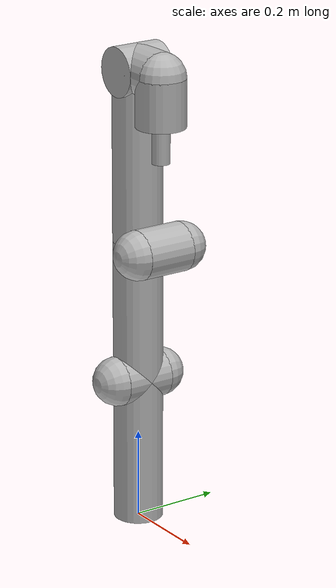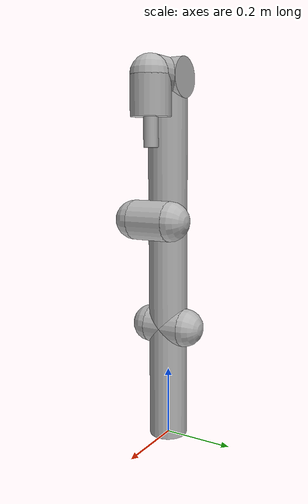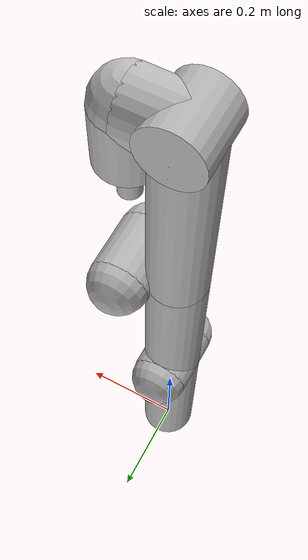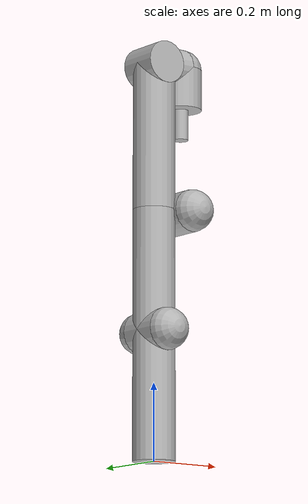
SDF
<?xml version='1.0'?>
<sdf version='1.6'>
		<model name="pmfranka">
			<self_collide>true</self_collide>
			<pose>0.0 0.0 0.0 0.0 0.0 0.0</pose>
			<!-- Start of parts of the pmodel pmfranka -->
			<!-- End of parts of the pmodel pmfranka -->

			<!-- Start of links of the pmodel pmfranka -->
			<!-- link full name is pmfranka::Li0 -->
			<link name="1-Li0">
					<pose>0.0 0.0 0.0 0.0 0.0 0.0</pose>
					<inertial>
						<pose>0.0 0.0 0.0 0.0 0.0 0.0</pose>
						<inertia>
							<ixx>1.0</ixx>
							<ixy>0.0</ixy>
							<ixz>0.0</ixz>
							<iyy>1.0</iyy>
							<iyz>0.0</iyz>
							<izz>1.0</izz>
						</inertia>
						<mass>3.452500104904175</mass>
					</inertial>
					<!-- body full name is pmfranka::Li0::Cy0 -->
					<collision name="1--Cy0">
						<laser_retro>0.0</laser_retro>
						<pose>0.0 0.0 0.1665000021457672 0.0 0.0 0.0</pose>
						<geometry>
							<cylinder>
								<radius>0.054999999701976776</radius>
								<length>0.3330000042915344</length>
							</cylinder>
						</geometry>
						<surface>
							<bounce>
								<restitution_coefficient>0.0</restitution_coefficient>
								<threshold>100000.0</threshold>
							</bounce>
							<friction>
								<ode>
									<mu>1.0</mu>
									<mu2>1.0</mu2>
									<fdir1>0.0 0.0 0.0</fdir1>
									<slip1>0.0</slip1>
									<slip2>0.0</slip2>
								</ode>
								<torsional>
									<coefficient>1.0</coefficient>
									<surface_radius>0.0</surface_radius>
								</torsional>
							</friction>
						</surface>
					</collision>
					<visual name="1--Cy0">
						<laser_retro>0.0</laser_retro>
						<pose>0.0 0.0 0.1665000021457672 0.0 0.0 0.0</pose>
						<geometry>
							<cylinder>
								<radius>0.054999999701976776</radius>
								<length>0.3330000042915344</length>
							</cylinder>
						</geometry>
						<surface>
							<bounce>
								<restitution_coefficient>0.0</restitution_coefficient>
								<threshold>100000.0</threshold>
							</bounce>
							<friction>
								<ode>
									<mu>1.0</mu>
									<mu2>1.0</mu2>
									<fdir1>0.0 0.0 0.0</fdir1>
									<slip1>0.0</slip1>
									<slip2>0.0</slip2>
								</ode>
								<torsional>
									<coefficient>1.0</coefficient>
									<surface_radius>0.0</surface_radius>
								</torsional>
							</friction>
						</surface>
					</visual>
					<!-- WARNING: Annotation not found for the sensor FSJ0. The SDF generator relies on annotations to specify aspects of the
					  	 sensor that are accounted for in the equations. --> If you wish to reflect these aspects in SDF,
					     please add an appropriate annotation to the sensor. -->
			</link>
			<!-- link full name is pmfranka::Li1 -->
			<link name="2-Li1">
					<pose>0.0 0.0 0.3330000042915344 1.5707499980926514 0.0 0.0</pose>
					<inertial>
						<pose>0.0 0.0 0.0 0.0 0.0 0.0</pose>
						<inertia>
							<ixx>1.0</ixx>
							<ixy>0.0</ixy>
							<ixz>0.0</ixz>
							<iyy>1.0</iyy>
							<iyz>0.0</iyz>
							<izz>1.0</izz>
						</inertia>
						<mass>3.482100009918213</mass>
					</inertial>
					<!-- body full name is pmfranka::Li1::Cy1 -->
					<collision name="2--Cy1">
						<laser_retro>0.0</laser_retro>
						<pose>0.0 0.0 0.0 0.0 0.0 0.0</pose>
						<geometry>
							<cylinder>
								<radius>0.054999999701976776</radius>
								<length>0.10999999940395355</length>
							</cylinder>
						</geometry>
						<surface>
							<bounce>
								<restitution_coefficient>0.0</restitution_coefficient>
								<threshold>100000.0</threshold>
							</bounce>
							<friction>
								<ode>
									<mu>1.0</mu>
									<mu2>1.0</mu2>
									<fdir1>0.0 0.0 0.0</fdir1>
									<slip1>0.0</slip1>
									<slip2>0.0</slip2>
								</ode>
								<torsional>
									<coefficient>1.0</coefficient>
									<surface_radius>0.0</surface_radius>
								</torsional>
							</friction>
						</surface>
					</collision>
					<visual name="2--Cy1">
						<laser_retro>0.0</laser_retro>
						<pose>0.0 0.0 0.0 0.0 0.0 0.0</pose>
						<geometry>
							<cylinder>
								<radius>0.054999999701976776</radius>
								<length>0.10999999940395355</length>
							</cylinder>
						</geometry>
						<surface>
							<bounce>
								<restitution_coefficient>0.0</restitution_coefficient>
								<threshold>100000.0</threshold>
							</bounce>
							<friction>
								<ode>
									<mu>1.0</mu>
									<mu2>1.0</mu2>
									<fdir1>0.0 0.0 0.0</fdir1>
									<slip1>0.0</slip1>
									<slip2>0.0</slip2>
								</ode>
								<torsional>
									<coefficient>1.0</coefficient>
									<surface_radius>0.0</surface_radius>
								</torsional>
							</friction>
						</surface>
					</visual>
					<!-- body full name is pmfranka::Li1::Sp1a -->
					<collision name="3--Sp1a">
						<laser_retro>0.0</laser_retro>
						<pose>0.0 0.0 0.054999999701976776 0.0 0.0 0.0</pose>
						<geometry>
							<sphere>
								<radius>0.054999999701976776</radius>
							</sphere>
						</geometry>
						<surface>
							<bounce>
								<restitution_coefficient>0.0</restitution_coefficient>
								<threshold>100000.0</threshold>
							</bounce>
							<friction>
								<ode>
									<mu>1.0</mu>
									<mu2>1.0</mu2>
									<fdir1>0.0 0.0 0.0</fdir1>
									<slip1>0.0</slip1>
									<slip2>0.0</slip2>
								</ode>
								<torsional>
									<coefficient>1.0</coefficient>
									<surface_radius>0.0</surface_radius>
								</torsional>
							</friction>
						</surface>
					</collision>
					<visual name="3--Sp1a">
						<laser_retro>0.0</laser_retro>
						<pose>0.0 0.0 0.054999999701976776 0.0 0.0 0.0</pose>
						<geometry>
							<sphere>
								<radius>0.054999999701976776</radius>
							</sphere>
						</geometry>
						<surface>
							<bounce>
								<restitution_coefficient>0.0</restitution_coefficient>
								<threshold>100000.0</threshold>
							</bounce>
							<friction>
								<ode>
									<mu>1.0</mu>
									<mu2>1.0</mu2>
									<fdir1>0.0 0.0 0.0</fdir1>
									<slip1>0.0</slip1>
									<slip2>0.0</slip2>
								</ode>
								<torsional>
									<coefficient>1.0</coefficient>
									<surface_radius>0.0</surface_radius>
								</torsional>
							</friction>
						</surface>
					</visual>
					<!-- body full name is pmfranka::Li1::Sp1b -->
					<collision name="4--Sp1b">
						<laser_retro>0.0</laser_retro>
						<pose>0.0 0.0 -0.054999999701976776 0.0 0.0 0.0</pose>
						<geometry>
							<sphere>
								<radius>0.054999999701976776</radius>
							</sphere>
						</geometry>
						<surface>
							<bounce>
								<restitution_coefficient>0.0</restitution_coefficient>
								<threshold>100000.0</threshold>
							</bounce>
							<friction>
								<ode>
									<mu>1.0</mu>
									<mu2>1.0</mu2>
									<fdir1>0.0 0.0 0.0</fdir1>
									<slip1>0.0</slip1>
									<slip2>0.0</slip2>
								</ode>
								<torsional>
									<coefficient>1.0</coefficient>
									<surface_radius>0.0</surface_radius>
								</torsional>
							</friction>
						</surface>
					</collision>
					<visual name="4--Sp1b">
						<laser_retro>0.0</laser_retro>
						<pose>0.0 0.0 -0.054999999701976776 0.0 0.0 0.0</pose>
						<geometry>
							<sphere>
								<radius>0.054999999701976776</radius>
							</sphere>
						</geometry>
						<surface>
							<bounce>
								<restitution_coefficient>0.0</restitution_coefficient>
								<threshold>100000.0</threshold>
							</bounce>
							<friction>
								<ode>
									<mu>1.0</mu>
									<mu2>1.0</mu2>
									<fdir1>0.0 0.0 0.0</fdir1>
									<slip1>0.0</slip1>
									<slip2>0.0</slip2>
								</ode>
								<torsional>
									<coefficient>1.0</coefficient>
									<surface_radius>0.0</surface_radius>
								</torsional>
							</friction>
						</surface>
					</visual>
					<!-- WARNING: Annotation not found for the sensor FSJ1. The SDF generator relies on annotations to specify aspects of the
					  	 sensor that are accounted for in the equations. --> If you wish to reflect these aspects in SDF,
					     please add an appropriate annotation to the sensor. -->
			</link>
			<!-- link full name is pmfranka::Li2 -->
			<link name="3-Li2">
					<pose>0.0 0.0 0.3330000042915344 0.0 0.0 0.0</pose>
					<inertial>
						<pose>0.0 0.0 0.0 0.0 0.0 0.0</pose>
						<inertia>
							<ixx>1.0</ixx>
							<ixy>0.0</ixy>
							<ixz>0.0</ixz>
							<iyy>1.0</iyy>
							<iyz>0.0</iyz>
							<izz>1.0</izz>
						</inertia>
						<mass>3.482100009918213</mass>
					</inertial>
					<!-- body full name is pmfranka::Li2::Cy2 -->
					<collision name="5--Cy2">
						<laser_retro>0.0</laser_retro>
						<pose>0.0 0.0 0.15800000727176666 0.0 0.0 0.0</pose>
						<geometry>
							<cylinder>
								<radius>0.054999999701976776</radius>
								<length>0.3160000145435333</length>
							</cylinder>
						</geometry>
						<surface>
							<bounce>
								<restitution_coefficient>0.0</restitution_coefficient>
								<threshold>100000.0</threshold>
							</bounce>
							<friction>
								<ode>
									<mu>1.0</mu>
									<mu2>1.0</mu2>
									<fdir1>0.0 0.0 0.0</fdir1>
									<slip1>0.0</slip1>
									<slip2>0.0</slip2>
								</ode>
								<torsional>
									<coefficient>1.0</coefficient>
									<surface_radius>0.0</surface_radius>
								</torsional>
							</friction>
						</surface>
					</collision>
					<visual name="5--Cy2">
						<laser_retro>0.0</laser_retro>
						<pose>0.0 0.0 0.15800000727176666 0.0 0.0 0.0</pose>
						<geometry>
							<cylinder>
								<radius>0.054999999701976776</radius>
								<length>0.3160000145435333</length>
							</cylinder>
						</geometry>
						<surface>
							<bounce>
								<restitution_coefficient>0.0</restitution_coefficient>
								<threshold>100000.0</threshold>
							</bounce>
							<friction>
								<ode>
									<mu>1.0</mu>
									<mu2>1.0</mu2>
									<fdir1>0.0 0.0 0.0</fdir1>
									<slip1>0.0</slip1>
									<slip2>0.0</slip2>
								</ode>
								<torsional>
									<coefficient>1.0</coefficient>
									<surface_radius>0.0</surface_radius>
								</torsional>
							</friction>
						</surface>
					</visual>
					<!-- WARNING: Annotation not found for the sensor FSJ2. The SDF generator relies on annotations to specify aspects of the
					  	 sensor that are accounted for in the equations. --> If you wish to reflect these aspects in SDF,
					     please add an appropriate annotation to the sensor. -->
			</link>
			<!-- link full name is pmfranka::Li3 -->
			<link name="4-Li3">
					<pose>0.08250000327825546 0.0 0.6489999890327454 1.5707499980926514 0.0 0.0</pose>
					<inertial>
						<pose>0.0 0.0 0.0 0.0 0.0 0.0</pose>
						<inertia>
							<ixx>1.0</ixx>
							<ixy>0.0</ixy>
							<ixz>0.0</ixz>
							<iyy>1.0</iyy>
							<iyz>0.0</iyz>
							<izz>1.0</izz>
						</inertia>
						<mass>4.05620002746582</mass>
					</inertial>
					<!-- body full name is pmfranka::Li3::Cy3 -->
					<collision name="6--Cy3">
						<laser_retro>0.0</laser_retro>
						<pose>0.0 0.0 0.0 0.0 0.0 0.0</pose>
						<geometry>
							<cylinder>
								<radius>0.054999999701976776</radius>
								<length>0.10999999940395355</length>
							</cylinder>
						</geometry>
						<surface>
							<bounce>
								<restitution_coefficient>0.0</restitution_coefficient>
								<threshold>100000.0</threshold>
							</bounce>
							<friction>
								<ode>
									<mu>1.0</mu>
									<mu2>1.0</mu2>
									<fdir1>0.0 0.0 0.0</fdir1>
									<slip1>0.0</slip1>
									<slip2>0.0</slip2>
								</ode>
								<torsional>
									<coefficient>1.0</coefficient>
									<surface_radius>0.0</surface_radius>
								</torsional>
							</friction>
						</surface>
					</collision>
					<visual name="6--Cy3">
						<laser_retro>0.0</laser_retro>
						<pose>0.0 0.0 0.0 0.0 0.0 0.0</pose>
						<geometry>
							<cylinder>
								<radius>0.054999999701976776</radius>
								<length>0.10999999940395355</length>
							</cylinder>
						</geometry>
						<surface>
							<bounce>
								<restitution_coefficient>0.0</restitution_coefficient>
								<threshold>100000.0</threshold>
							</bounce>
							<friction>
								<ode>
									<mu>1.0</mu>
									<mu2>1.0</mu2>
									<fdir1>0.0 0.0 0.0</fdir1>
									<slip1>0.0</slip1>
									<slip2>0.0</slip2>
								</ode>
								<torsional>
									<coefficient>1.0</coefficient>
									<surface_radius>0.0</surface_radius>
								</torsional>
							</friction>
						</surface>
					</visual>
					<!-- body full name is pmfranka::Li3::Sp3a -->
					<collision name="7--Sp3a">
						<laser_retro>0.0</laser_retro>
						<pose>0.0 0.0 0.054999999701976776 0.0 0.0 0.0</pose>
						<geometry>
							<sphere>
								<radius>0.054999999701976776</radius>
							</sphere>
						</geometry>
						<surface>
							<bounce>
								<restitution_coefficient>0.0</restitution_coefficient>
								<threshold>100000.0</threshold>
							</bounce>
							<friction>
								<ode>
									<mu>1.0</mu>
									<mu2>1.0</mu2>
									<fdir1>0.0 0.0 0.0</fdir1>
									<slip1>0.0</slip1>
									<slip2>0.0</slip2>
								</ode>
								<torsional>
									<coefficient>1.0</coefficient>
									<surface_radius>0.0</surface_radius>
								</torsional>
							</friction>
						</surface>
					</collision>
					<visual name="7--Sp3a">
						<laser_retro>0.0</laser_retro>
						<pose>0.0 0.0 0.054999999701976776 0.0 0.0 0.0</pose>
						<geometry>
							<sphere>
								<radius>0.054999999701976776</radius>
							</sphere>
						</geometry>
						<surface>
							<bounce>
								<restitution_coefficient>0.0</restitution_coefficient>
								<threshold>100000.0</threshold>
							</bounce>
							<friction>
								<ode>
									<mu>1.0</mu>
									<mu2>1.0</mu2>
									<fdir1>0.0 0.0 0.0</fdir1>
									<slip1>0.0</slip1>
									<slip2>0.0</slip2>
								</ode>
								<torsional>
									<coefficient>1.0</coefficient>
									<surface_radius>0.0</surface_radius>
								</torsional>
							</friction>
						</surface>
					</visual>
					<!-- body full name is pmfranka::Li3::Sp3b -->
					<collision name="8--Sp3b">
						<laser_retro>0.0</laser_retro>
						<pose>0.0 0.0 -0.054999999701976776 0.0 0.0 0.0</pose>
						<geometry>
							<sphere>
								<radius>0.054999999701976776</radius>
							</sphere>
						</geometry>
						<surface>
							<bounce>
								<restitution_coefficient>0.0</restitution_coefficient>
								<threshold>100000.0</threshold>
							</bounce>
							<friction>
								<ode>
									<mu>1.0</mu>
									<mu2>1.0</mu2>
									<fdir1>0.0 0.0 0.0</fdir1>
									<slip1>0.0</slip1>
									<slip2>0.0</slip2>
								</ode>
								<torsional>
									<coefficient>1.0</coefficient>
									<surface_radius>0.0</surface_radius>
								</torsional>
							</friction>
						</surface>
					</collision>
					<visual name="8--Sp3b">
						<laser_retro>0.0</laser_retro>
						<pose>0.0 0.0 -0.054999999701976776 0.0 0.0 0.0</pose>
						<geometry>
							<sphere>
								<radius>0.054999999701976776</radius>
							</sphere>
						</geometry>
						<surface>
							<bounce>
								<restitution_coefficient>0.0</restitution_coefficient>
								<threshold>100000.0</threshold>
							</bounce>
							<friction>
								<ode>
									<mu>1.0</mu>
									<mu2>1.0</mu2>
									<fdir1>0.0 0.0 0.0</fdir1>
									<slip1>0.0</slip1>
									<slip2>0.0</slip2>
								</ode>
								<torsional>
									<coefficient>1.0</coefficient>
									<surface_radius>0.0</surface_radius>
								</torsional>
							</friction>
						</surface>
					</visual>
					<!-- WARNING: Annotation not found for the sensor FSJ3. The SDF generator relies on annotations to specify aspects of the
					  	 sensor that are accounted for in the equations. --> If you wish to reflect these aspects in SDF,
					     please add an appropriate annotation to the sensor. -->
			</link>
			<!-- link full name is pmfranka::Li4 -->
			<link name="5-Li4">
					<pose>0.0 0.0 0.6489999890327454 0.0 0.0 0.0</pose>
					<inertial>
						<pose>0.0 0.0 0.0 0.0 0.0 0.0</pose>
						<inertia>
							<ixx>1.0</ixx>
							<ixy>0.0</ixy>
							<ixz>0.0</ixz>
							<iyy>1.0</iyy>
							<iyz>0.0</iyz>
							<izz>1.0</izz>
						</inertia>
						<mass>3.4821999073028564</mass>
					</inertial>
					<!-- body full name is pmfranka::Li4::Cy4 -->
					<collision name="9--Cy4">
						<laser_retro>0.0</laser_retro>
						<pose>0.0 0.0 0.19200000166893005 0.0 0.0 0.0</pose>
						<geometry>
							<cylinder>
								<radius>0.054999999701976776</radius>
								<length>0.3840000033378601</length>
							</cylinder>
						</geometry>
						<surface>
							<bounce>
								<restitution_coefficient>0.0</restitution_coefficient>
								<threshold>100000.0</threshold>
							</bounce>
							<friction>
								<ode>
									<mu>1.0</mu>
									<mu2>1.0</mu2>
									<fdir1>0.0 0.0 0.0</fdir1>
									<slip1>0.0</slip1>
									<slip2>0.0</slip2>
								</ode>
								<torsional>
									<coefficient>1.0</coefficient>
									<surface_radius>0.0</surface_radius>
								</torsional>
							</friction>
						</surface>
					</collision>
					<visual name="9--Cy4">
						<laser_retro>0.0</laser_retro>
						<pose>0.0 0.0 0.19200000166893005 0.0 0.0 0.0</pose>
						<geometry>
							<cylinder>
								<radius>0.054999999701976776</radius>
								<length>0.3840000033378601</length>
							</cylinder>
						</geometry>
						<surface>
							<bounce>
								<restitution_coefficient>0.0</restitution_coefficient>
								<threshold>100000.0</threshold>
							</bounce>
							<friction>
								<ode>
									<mu>1.0</mu>
									<mu2>1.0</mu2>
									<fdir1>0.0 0.0 0.0</fdir1>
									<slip1>0.0</slip1>
									<slip2>0.0</slip2>
								</ode>
								<torsional>
									<coefficient>1.0</coefficient>
									<surface_radius>0.0</surface_radius>
								</torsional>
							</friction>
						</surface>
					</visual>
					<!-- WARNING: Annotation not found for the sensor FSJ4. The SDF generator relies on annotations to specify aspects of the
					  	 sensor that are accounted for in the equations. --> If you wish to reflect these aspects in SDF,
					     please add an appropriate annotation to the sensor. -->
			</link>
			<!-- link full name is pmfranka::Li5 -->
			<link name="6-Li5">
					<pose>0.0 0.0 1.0330000221729279 1.5707499980926514 0.0 0.0</pose>
					<inertial>
						<pose>0.0 0.0 0.0 0.0 0.0 0.0</pose>
						<inertia>
							<ixx>1.0</ixx>
							<ixy>0.0</ixy>
							<ixz>0.0</ixz>
							<iyy>1.0</iyy>
							<iyz>0.0</iyz>
							<izz>1.0</izz>
						</inertia>
						<mass>2.163300037384033</mass>
					</inertial>
					<!-- body full name is pmfranka::Li5::Cy5 -->
					<collision name="10--Cy5">
						<laser_retro>0.0</laser_retro>
						<pose>0.0 0.0 0.0 0.0 0.0 0.0</pose>
						<geometry>
							<cylinder>
								<radius>0.054999999701976776</radius>
								<length>0.10999999940395355</length>
							</cylinder>
						</geometry>
						<surface>
							<bounce>
								<restitution_coefficient>0.0</restitution_coefficient>
								<threshold>100000.0</threshold>
							</bounce>
							<friction>
								<ode>
									<mu>1.0</mu>
									<mu2>1.0</mu2>
									<fdir1>0.0 0.0 0.0</fdir1>
									<slip1>0.0</slip1>
									<slip2>0.0</slip2>
								</ode>
								<torsional>
									<coefficient>1.0</coefficient>
									<surface_radius>0.0</surface_radius>
								</torsional>
							</friction>
						</surface>
					</collision>
					<visual name="10--Cy5">
						<laser_retro>0.0</laser_retro>
						<pose>0.0 0.0 0.0 0.0 0.0 0.0</pose>
						<geometry>
							<cylinder>
								<radius>0.054999999701976776</radius>
								<length>0.10999999940395355</length>
							</cylinder>
						</geometry>
						<surface>
							<bounce>
								<restitution_coefficient>0.0</restitution_coefficient>
								<threshold>100000.0</threshold>
							</bounce>
							<friction>
								<ode>
									<mu>1.0</mu>
									<mu2>1.0</mu2>
									<fdir1>0.0 0.0 0.0</fdir1>
									<slip1>0.0</slip1>
									<slip2>0.0</slip2>
								</ode>
								<torsional>
									<coefficient>1.0</coefficient>
									<surface_radius>0.0</surface_radius>
								</torsional>
							</friction>
						</surface>
					</visual>
					<!-- WARNING: Annotation not found for the sensor FSJ5. The SDF generator relies on annotations to specify aspects of the
					  	 sensor that are accounted for in the equations. --> If you wish to reflect these aspects in SDF,
					     please add an appropriate annotation to the sensor. -->
			</link>
			<!-- link full name is pmfranka::Li6 -->
			<link name="7-Li6">
					<pose>0.0 0.0 1.0330000221729279 1.5707499980926514 0.0 1.5707499980926514</pose>
					<inertial>
						<pose>0.0 0.0 0.0 0.0 0.0 0.0</pose>
						<inertia>
							<ixx>1.0</ixx>
							<ixy>0.0</ixy>
							<ixz>0.0</ixz>
							<iyy>1.0</iyy>
							<iyz>0.0</iyz>
							<izz>1.0</izz>
						</inertia>
						<mass>2.34660005569458</mass>
					</inertial>
					<!-- body full name is pmfranka::Li6::Cy6 -->
					<collision name="11--Cy6">
						<laser_retro>0.0</laser_retro>
						<pose>0.0 0.0 0.04399999976158142 0.0 0.0 0.0</pose>
						<geometry>
							<cylinder>
								<radius>0.054999999701976776</radius>
								<length>0.08799999952316284</length>
							</cylinder>
						</geometry>
						<surface>
							<bounce>
								<restitution_coefficient>0.0</restitution_coefficient>
								<threshold>100000.0</threshold>
							</bounce>
							<friction>
								<ode>
									<mu>1.0</mu>
									<mu2>1.0</mu2>
									<fdir1>0.0 0.0 0.0</fdir1>
									<slip1>0.0</slip1>
									<slip2>0.0</slip2>
								</ode>
								<torsional>
									<coefficient>1.0</coefficient>
									<surface_radius>0.0</surface_radius>
								</torsional>
							</friction>
						</surface>
					</collision>
					<visual name="11--Cy6">
						<laser_retro>0.0</laser_retro>
						<pose>0.0 0.0 0.04399999976158142 0.0 0.0 0.0</pose>
						<geometry>
							<cylinder>
								<radius>0.054999999701976776</radius>
								<length>0.08799999952316284</length>
							</cylinder>
						</geometry>
						<surface>
							<bounce>
								<restitution_coefficient>0.0</restitution_coefficient>
								<threshold>100000.0</threshold>
							</bounce>
							<friction>
								<ode>
									<mu>1.0</mu>
									<mu2>1.0</mu2>
									<fdir1>0.0 0.0 0.0</fdir1>
									<slip1>0.0</slip1>
									<slip2>0.0</slip2>
								</ode>
								<torsional>
									<coefficient>1.0</coefficient>
									<surface_radius>0.0</surface_radius>
								</torsional>
							</friction>
						</surface>
					</visual>
					<!-- WARNING: Annotation not found for the sensor FSJ6. The SDF generator relies on annotations to specify aspects of the
					  	 sensor that are accounted for in the equations. --> If you wish to reflect these aspects in SDF,
					     please add an appropriate annotation to the sensor. -->
			</link>
			<!-- link full name is pmfranka::Li7 -->
			<link name="8-Li7">
					<pose>0.08799999952316284 0.0 1.0330000221729279 0.0 -3.1414999961853027 0.0</pose>
					<inertial>
						<pose>0.0 0.0 0.0 0.0 0.0 0.0</pose>
						<inertia>
							<ixx>1.0</ixx>
							<ixy>0.0</ixy>
							<ixz>0.0</ixz>
							<iyy>1.0</iyy>
							<iyz>0.0</iyz>
							<izz>1.0</izz>
						</inertia>
						<mass>0.31290000677108765</mass>
					</inertial>
					<!-- body full name is pmfranka::Li7::Sp7 -->
					<collision name="12--Sp7">
						<laser_retro>0.0</laser_retro>
						<pose>0.0 0.0 0.0 0.0 0.0 0.0</pose>
						<geometry>
							<sphere>
								<radius>0.054999999701976776</radius>
							</sphere>
						</geometry>
						<surface>
							<bounce>
								<restitution_coefficient>0.0</restitution_coefficient>
								<threshold>100000.0</threshold>
							</bounce>
							<friction>
								<ode>
									<mu>1.0</mu>
									<mu2>1.0</mu2>
									<fdir1>0.0 0.0 0.0</fdir1>
									<slip1>0.0</slip1>
									<slip2>0.0</slip2>
								</ode>
								<torsional>
									<coefficient>1.0</coefficient>
									<surface_radius>0.0</surface_radius>
								</torsional>
							</friction>
						</surface>
					</collision>
					<visual name="12--Sp7">
						<laser_retro>0.0</laser_retro>
						<pose>0.0 0.0 0.0 0.0 0.0 0.0</pose>
						<geometry>
							<sphere>
								<radius>0.054999999701976776</radius>
							</sphere>
						</geometry>
						<surface>
							<bounce>
								<restitution_coefficient>0.0</restitution_coefficient>
								<threshold>100000.0</threshold>
							</bounce>
							<friction>
								<ode>
									<mu>1.0</mu>
									<mu2>1.0</mu2>
									<fdir1>0.0 0.0 0.0</fdir1>
									<slip1>0.0</slip1>
									<slip2>0.0</slip2>
								</ode>
								<torsional>
									<coefficient>1.0</coefficient>
									<surface_radius>0.0</surface_radius>
								</torsional>
							</friction>
						</surface>
					</visual>
					<!-- body full name is pmfranka::Li7::Cy7 -->
					<collision name="13--Cy7">
						<laser_retro>0.0</laser_retro>
						<pose>0.0 0.0 0.05350000038743019 0.0 0.0 0.0</pose>
						<geometry>
							<cylinder>
								<radius>0.054999999701976776</radius>
								<length>0.10700000077486038</length>
							</cylinder>
						</geometry>
						<surface>
							<bounce>
								<restitution_coefficient>0.0</restitution_coefficient>
								<threshold>100000.0</threshold>
							</bounce>
							<friction>
								<ode>
									<mu>1.0</mu>
									<mu2>1.0</mu2>
									<fdir1>0.0 0.0 0.0</fdir1>
									<slip1>0.0</slip1>
									<slip2>0.0</slip2>
								</ode>
								<torsional>
									<coefficient>1.0</coefficient>
									<surface_radius>0.0</surface_radius>
								</torsional>
							</friction>
						</surface>
					</collision>
					<visual name="13--Cy7">
						<laser_retro>0.0</laser_retro>
						<pose>0.0 0.0 0.05350000038743019 0.0 0.0 0.0</pose>
						<geometry>
							<cylinder>
								<radius>0.054999999701976776</radius>
								<length>0.10700000077486038</length>
							</cylinder>
						</geometry>
						<surface>
							<bounce>
								<restitution_coefficient>0.0</restitution_coefficient>
								<threshold>100000.0</threshold>
							</bounce>
							<friction>
								<ode>
									<mu>1.0</mu>
									<mu2>1.0</mu2>
									<fdir1>0.0 0.0 0.0</fdir1>
									<slip1>0.0</slip1>
									<slip2>0.0</slip2>
								</ode>
								<torsional>
									<coefficient>1.0</coefficient>
									<surface_radius>0.0</surface_radius>
								</torsional>
							</friction>
						</surface>
					</visual>
					<!-- WARNING: Annotation not found for the sensor FSJ7. The SDF generator relies on annotations to specify aspects of the
					  	 sensor that are accounted for in the equations. --> If you wish to reflect these aspects in SDF,
					     please add an appropriate annotation to the sensor. -->
			</link>
			<!-- link full name is pmfranka::LiF -->
			<link name="9-LiF">
					<pose>0.08799999952316284 0.0 0.9260000213980675 0.0 -3.1414999961853027 0.0</pose>
					<inertial>
						<pose>0.0 0.0 0.0 0.0 0.0 0.0</pose>
						<inertia>
							<ixx>1.0</ixx>
							<ixy>0.0</ixy>
							<ixz>0.0</ixz>
							<iyy>1.0</iyy>
							<iyz>0.0</iyz>
							<izz>1.0</izz>
						</inertia>
						<mass>1.0</mass>
					</inertial>
					<!-- body full name is pmfranka::LiF::CyF -->
					<collision name="14--CyF">
						<laser_retro>0.0</laser_retro>
						<pose>0.0 0.0 0.03999999910593033 0.0 0.0 0.0</pose>
						<geometry>
							<cylinder>
								<radius>0.019999999552965164</radius>
								<length>0.07999999821186066</length>
							</cylinder>
						</geometry>
						<surface>
							<bounce>
								<restitution_coefficient>0.0</restitution_coefficient>
								<threshold>100000.0</threshold>
							</bounce>
							<friction>
								<ode>
									<mu>1.0</mu>
									<mu2>1.0</mu2>
									<fdir1>0.0 0.0 0.0</fdir1>
									<slip1>0.0</slip1>
									<slip2>0.0</slip2>
								</ode>
								<torsional>
									<coefficient>1.0</coefficient>
									<surface_radius>0.0</surface_radius>
								</torsional>
							</friction>
						</surface>
					</collision>
					<visual name="14--CyF">
						<laser_retro>0.0</laser_retro>
						<pose>0.0 0.0 0.03999999910593033 0.0 0.0 0.0</pose>
						<geometry>
							<cylinder>
								<radius>0.019999999552965164</radius>
								<length>0.07999999821186066</length>
							</cylinder>
						</geometry>
						<surface>
							<bounce>
								<restitution_coefficient>0.0</restitution_coefficient>
								<threshold>100000.0</threshold>
							</bounce>
							<friction>
								<ode>
									<mu>1.0</mu>
									<mu2>1.0</mu2>
									<fdir1>0.0 0.0 0.0</fdir1>
									<slip1>0.0</slip1>
									<slip2>0.0</slip2>
								</ode>
								<torsional>
									<coefficient>1.0</coefficient>
									<surface_radius>0.0</surface_radius>
								</torsional>
							</friction>
						</surface>
					</visual>
					<!-- WARNING: Annotation not found for the sensor FSG. The SDF generator relies on annotations to specify aspects of the
					  	 sensor that are accounted for in the equations. --> If you wish to reflect these aspects in SDF,
					     please add an appropriate annotation to the sensor. -->
			</link>
			<!-- End of links of the pmodel pmfranka -->

			<!-- Start of joints of the pmodel pmfranka -->
			<!-- Full name of joint: pmfranka::Li6::J6 from pmfranka::Li6 to pmfranka::Li7-->
			<joint name="10-J6" type="revolute">
				<pose>0.08799999914540547 0.0 8.153851539294266E-6 -1.570935312901533 4.292697295780423E-9 1.570842655496943</pose>
				<parent>7-Li6</parent>
				<child>8-Li7</child>
			</joint>
			<!-- Full name of joint: pmfranka::Li7::J7 from pmfranka::Li7 to pmfranka::LiF-->
			<joint name="11-J7" type="revolute">
				<pose>9.914342338088189E-6 0.0 -0.1070000003155418 0.0 -0.0 0.0</pose>
				<parent>8-Li7</parent>
				<child>9-LiF</child>
			</joint>
			<!-- Full name of joint: pmfranka::Li2::J2 from pmfranka::Li2 to pmfranka::Li3-->
			<joint name="12-J2" type="revolute">
				<pose>-0.08250000327825546 -0.31599998440208793 -1.4639869197342705E-5 -1.5707499980926514 -0.0 0.0</pose>
				<parent>3-Li2</parent>
				<child>4-Li3</child>
			</joint>
			<!-- Full name of joint: pmfranka::Li0::J0 from pmfranka::Li0 to pmfranka::Li1-->
			<joint name="13-J0" type="revolute">
				<pose>0.0 -0.33300000393416734 -1.5427458040971366E-5 -1.5707499980926514 -0.0 0.0</pose>
				<parent>1-Li0</parent>
				<child>2-Li1</child>
			</joint>
			<!-- Full name of joint: pmfranka::Li1::J1 from pmfranka::Li1 to pmfranka::Li2-->
			<joint name="14-J1" type="revolute">
				<pose>0.0 0.0 0.0 1.5707499980926514 -0.0 0.0</pose>
				<parent>2-Li1</parent>
				<child>3-Li2</child>
			</joint>
			<!-- Full name of joint: pmfranka::Li3::J3 from pmfranka::Li3 to pmfranka::Li4-->
			<joint name="15-J3" type="revolute">
				<pose>0.08250000327825546 0.0 0.0 1.5707499980926514 -0.0 0.0</pose>
				<parent>4-Li3</parent>
				<child>5-Li4</child>
			</joint>
			<!-- Full name of joint: pmfranka::Li4::J4 from pmfranka::Li4 to pmfranka::Li5-->
			<joint name="16-J4" type="revolute">
				<pose>0.0 -0.3840000327280836 -1.7790223191154432E-5 -1.5707499980926514 -0.0 0.0</pose>
				<parent>5-Li4</parent>
				<child>6-Li5</child>
			</joint>
			<!-- Full name of joint: pmfranka::Li5::J5 from pmfranka::Li5 to pmfranka::Li6-->
			<joint name="17-J5" type="revolute">
				<pose>0.0 0.0 0.0 0.7853518352317902 -1.570730808115866 -0.7853981628608612</pose>
				<parent>6-Li5</parent>
				<child>7-Li6</child>
			</joint>
			<!-- End of joints of the pmodel pmfranka -->

			<!-- Start of fixed connections of the pmodel pmfranka -->
			<!-- End of fixed connections of the pmodel pmfranka -->
		</model>
</sdf>
